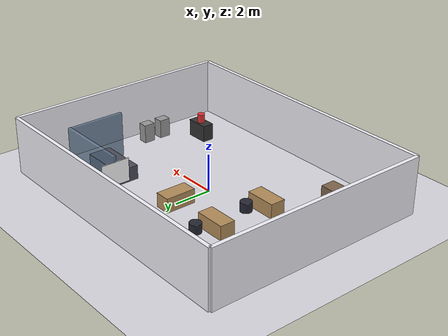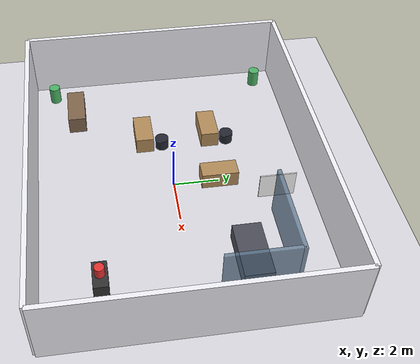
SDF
<?xml version="1.0"?>
<sdf version="1.6">
  <world name="creative_office_world">

    <!-- ==================== PHYSICS & LIGHTING ==================== -->

    <physics type="ode">
      <max_step_size>0.001</max_step_size>
      <real_time_factor>1.0</real_time_factor>
      <real_time_update_rate>1000</real_time_update_rate>
    </physics>

    <!-- Sun (overhead lighting) -->
    <include>
      <uri>model://sun</uri>
    </include>

    <!-- Ambient office lighting -->
    <light type="directional" name="office_light_1">
      <pose>5 5 8 0 0 0</pose>
      <diffuse>0.9 0.9 0.95 1</diffuse>
      <specular>0.2 0.2 0.3 1</specular>
      <direction>-0.3 -0.3 -0.9</direction>
      <cast_shadows>true</cast_shadows>
    </light>

    <light type="point" name="ceiling_light_1">
      <pose>4 4 3.5 0 0 0</pose>
      <diffuse>1.0 1.0 0.95 1</diffuse>
      <specular>0.5 0.5 0.5 1</specular>
      <attenuation>
        <range>10</range>
        <constant>0.5</constant>
        <linear>0.01</linear>
        <quadratic>0.001</quadratic>
      </attenuation>
    </light>

    <!-- ==================== GROUND PLANE ==================== -->

    <model name="office_floor">
      <static>true</static>
      <link name="link">
        <collision name="collision">
          <geometry>
            <plane>
              <normal>0 0 1</normal>
              <size>20 20</size>
            </plane>
          </geometry>
          <surface>
            <friction>
              <ode>
                <mu>100</mu>
                <mu2>50</mu2>
              </ode>
            </friction>
          </surface>
        </collision>
        <visual name="visual">
          <geometry>
            <plane>
              <normal>0 0 1</normal>
              <size>20 20</size>
            </plane>
          </geometry>
          <material>
            <ambient>0.85 0.85 0.88 1</ambient>
            <diffuse>0.85 0.85 0.88 1</diffuse>
            <specular>0.1 0.1 0.1 1</specular>
          </material>
        </visual>
      </link>
    </model>

    <!-- ==================== OFFICE WALLS ==================== -->

    <!-- North Wall -->
    <model name="north_wall">
      <static>true</static>
      <pose>0 6 1.5 0 0 0</pose>
      <link name="link">
        <collision name="collision">
          <geometry>
            <box>
              <size>15 0.2 3</size>
            </box>
          </geometry>
        </collision>
        <visual name="visual">
          <geometry>
            <box>
              <size>15 0.2 3</size>
            </box>
          </geometry>
          <material>
            <ambient>0.95 0.95 0.98 1</ambient>
            <diffuse>0.95 0.95 0.98 1</diffuse>
          </material>
        </visual>
      </link>
    </model>

    <!-- South Wall -->
    <model name="south_wall">
      <static>true</static>
      <pose>0 -6 1.5 0 0 0</pose>
      <link name="link">
        <collision name="collision">
          <geometry>
            <box>
              <size>15 0.2 3</size>
            </box>
          </geometry>
        </collision>
        <visual name="visual">
          <geometry>
            <box>
              <size>15 0.2 3</size>
            </box>
          </geometry>
          <material>
            <ambient>0.95 0.95 0.98 1</ambient>
            <diffuse>0.95 0.95 0.98 1</diffuse>
          </material>
        </visual>
      </link>
    </model>

    <!-- East Wall -->
    <model name="east_wall">
      <static>true</static>
      <pose>7.5 0 1.5 0 0 0</pose>
      <link name="link">
        <collision name="collision">
          <geometry>
            <box>
              <size>0.2 12 3</size>
            </box>
          </geometry>
        </collision>
        <visual name="visual">
          <geometry>
            <box>
              <size>0.2 12 3</size>
            </box>
          </geometry>
          <material>
            <ambient>0.95 0.95 0.98 1</ambient>
            <diffuse>0.95 0.95 0.98 1</diffuse>
          </material>
        </visual>
      </link>
    </model>

    <!-- West Wall -->
    <model name="west_wall">
      <static>true</static>
      <pose>-7.5 0 1.5 0 0 0</pose>
      <link name="link">
        <collision name="collision">
          <geometry>
            <box>
              <size>0.2 12 3</size>
            </box>
          </geometry>
        </collision>
        <visual name="visual">
          <geometry>
            <box>
              <size>0.2 12 3</size>
            </box>
          </geometry>
          <material>
            <ambient>0.95 0.95 0.98 1</ambient>
            <diffuse>0.95 0.95 0.98 1</diffuse>
          </material>
        </visual>
      </link>
    </model>

    <!-- ==================== RECEPTION AREA ==================== -->

    <!-- Reception Desk (Front) -->
    <model name="reception_desk">
      <static>true</static>
      <pose>-5 -4 0.4 0 0 0</pose>
      <link name="link">
        <collision name="collision">
          <geometry>
            <box>
              <size>2.0 0.8 0.8</size>
            </box>
          </geometry>
        </collision>
        <visual name="visual">
          <geometry>
            <box>
              <size>2.0 0.8 0.8</size>
            </box>
          </geometry>
          <material>
            <ambient>0.4 0.3 0.25 1</ambient>
            <diffuse>0.5 0.4 0.3 1</diffuse>
          </material>
        </visual>
      </link>
    </model>

    <!-- ==================== OPEN WORKSPACE DESKS ==================== -->

    <!-- Work Desk 1 -->
    <model name="desk_1">
      <static>true</static>
      <pose>-3 2 0.375 0 0 0</pose>
      <link name="link">
        <collision name="collision">
          <geometry>
            <box>
              <size>1.6 0.8 0.75</size>
            </box>
          </geometry>
        </collision>
        <visual name="visual">
          <geometry>
            <box>
              <size>1.6 0.8 0.75</size>
            </box>
          </geometry>
          <material>
            <ambient>0.6 0.45 0.3 1</ambient>
            <diffuse>0.7 0.55 0.35 1</diffuse>
          </material>
        </visual>
      </link>
    </model>

    <!-- Work Desk 2 -->
    <model name="desk_2">
      <static>true</static>
      <pose>-3 -1 0.375 0 0 0</pose>
      <link name="link">
        <collision name="collision">
          <geometry>
            <box>
              <size>1.6 0.8 0.75</size>
            </box>
          </geometry>
        </collision>
        <visual name="visual">
          <geometry>
            <box>
              <size>1.6 0.8 0.75</size>
            </box>
          </geometry>
          <material>
            <ambient>0.6 0.45 0.3 1</ambient>
            <diffuse>0.7 0.55 0.35 1</diffuse>
          </material>
        </visual>
      </link>
    </model>

    <!-- Work Desk 3 -->
    <model name="desk_3">
      <static>true</static>
      <pose>0 2 0.375 0 0 1.5708</pose>
      <link name="link">
        <collision name="collision">
          <geometry>
            <box>
              <size>1.6 0.8 0.75</size>
            </box>
          </geometry>
        </collision>
        <visual name="visual">
          <geometry>
            <box>
              <size>1.6 0.8 0.75</size>
            </box>
          </geometry>
          <material>
            <ambient>0.6 0.45 0.3 1</ambient>
            <diffuse>0.7 0.55 0.35 1</diffuse>
          </material>
        </visual>
      </link>
    </model>

    <!-- ==================== MEETING ROOM ==================== -->

    <!-- Meeting Room Divider Wall 1 -->
    <model name="meeting_wall_1">
      <static>true</static>
      <pose>4 4 1.2 0 0 0</pose>
      <link name="link">
        <collision name="collision">
          <geometry>
            <box>
              <size>4 0.15 2.4</size>
            </box>
          </geometry>
        </collision>
        <visual name="visual">
          <geometry>
            <box>
              <size>4 0.15 2.4</size>
            </box>
          </geometry>
          <material>
            <ambient>0.3 0.4 0.5 0.8</ambient>
            <diffuse>0.4 0.5 0.6 0.8</diffuse>
          </material>
        </visual>
      </link>
    </model>

    <!-- Meeting Room Divider Wall 2 -->
    <model name="meeting_wall_2">
      <static>true</static>
      <pose>5.9 2.5 1.2 0 0 1.5708</pose>
      <link name="link">
        <collision name="collision">
          <geometry>
            <box>
              <size>3 0.15 2.4</size>
            </box>
          </geometry>
        </collision>
        <visual name="visual">
          <geometry>
            <box>
              <size>3 0.15 2.4</size>
            </box>
          </geometry>
          <material>
            <ambient>0.3 0.4 0.5 0.8</ambient>
            <diffuse>0.4 0.5 0.6 0.8</diffuse>
          </material>
        </visual>
      </link>
    </model>

    <!-- Conference Table -->
    <model name="conference_table">
      <static>true</static>
      <pose>4.5 2.5 0.375 0 0 0</pose>
      <link name="link">
        <collision name="collision">
          <geometry>
            <box>
              <size>2.5 1.2 0.75</size>
            </box>
          </geometry>
        </collision>
        <visual name="visual">
          <geometry>
            <box>
              <size>2.5 1.2 0.75</size>
            </box>
          </geometry>
          <material>
            <ambient>0.2 0.2 0.25 1</ambient>
            <diffuse>0.3 0.3 0.35 1</diffuse>
          </material>
        </visual>
      </link>
    </model>

    <!-- ==================== COFFEE STATION ==================== -->

    <!-- Coffee Counter -->
    <model name="coffee_counter">
      <static>true</static>
      <pose>5 -3.5 0.45 0 0 0</pose>
      <link name="link">
        <collision name="collision">
          <geometry>
            <box>
              <size>1.2 0.6 0.9</size>
            </box>
          </geometry>
        </collision>
        <visual name="visual">
          <geometry>
            <box>
              <size>1.2 0.6 0.9</size>
            </box>
          </geometry>
          <material>
            <ambient>0.15 0.15 0.15 1</ambient>
            <diffuse>0.2 0.2 0.2 1</diffuse>
          </material>
        </visual>
      </link>
    </model>

    <!-- Coffee Machine (cylinder on counter) -->
    <model name="coffee_machine">
      <static>true</static>
      <pose>5 -3.5 1.1 0 0 0</pose>
      <link name="link">
        <collision name="collision">
          <geometry>
            <cylinder>
              <radius>0.2</radius>
              <length>0.5</length>
            </cylinder>
          </geometry>
        </collision>
        <visual name="visual">
          <geometry>
            <cylinder>
              <radius>0.2</radius>
              <length>0.5</length>
            </cylinder>
          </geometry>
          <material>
            <ambient>0.8 0.1 0.1 1</ambient>
            <diffuse>0.9 0.2 0.2 1</diffuse>
          </material>
        </visual>
      </link>
    </model>

    <!-- ==================== OFFICE CHAIRS (Small Cylinders) ==================== -->

    <!-- Chair 1 -->
    <model name="chair_1">
      <static>true</static>
      <pose>-2.5 2.8 0.25 0 0 0</pose>
      <link name="link">
        <collision name="collision">
          <geometry>
            <cylinder>
              <radius>0.3</radius>
              <length>0.5</length>
            </cylinder>
          </geometry>
        </collision>
        <visual name="visual">
          <geometry>
            <cylinder>
              <radius>0.3</radius>
              <length>0.5</length>
            </cylinder>
          </geometry>
          <material>
            <ambient>0.1 0.1 0.15 1</ambient>
            <diffuse>0.15 0.15 0.2 1</diffuse>
          </material>
        </visual>
      </link>
    </model>

    <!-- Chair 2 -->
    <model name="chair_2">
      <static>true</static>
      <pose>-2.5 -0.2 0.25 0 0 0</pose>
      <link name="link">
        <collision name="collision">
          <geometry>
            <cylinder>
              <radius>0.3</radius>
              <length>0.5</length>
            </cylinder>
          </geometry>
        </collision>
        <visual name="visual">
          <geometry>
            <cylinder>
              <radius>0.3</radius>
              <length>0.5</length>
            </cylinder>
          </geometry>
          <material>
            <ambient>0.1 0.1 0.15 1</ambient>
            <diffuse>0.15 0.15 0.2 1</diffuse>
          </material>
        </visual>
      </link>
    </model>

    <!-- ==================== FILING CABINETS ==================== -->

    <!-- Filing Cabinet 1 -->
    <model name="filing_cabinet_1">
      <static>true</static>
      <pose>6.5 -1 0.5 0 0 0</pose>
      <link name="link">
        <collision name="collision">
          <geometry>
            <box>
              <size>0.5 0.6 1.0</size>
            </box>
          </geometry>
        </collision>
        <visual name="visual">
          <geometry>
            <box>
              <size>0.5 0.6 1.0</size>
            </box>
          </geometry>
          <material>
            <ambient>0.5 0.5 0.5 1</ambient>
            <diffuse>0.6 0.6 0.6 1</diffuse>
          </material>
        </visual>
      </link>
    </model>

    <!-- Filing Cabinet 2 -->
    <model name="filing_cabinet_2">
      <static>true</static>
      <pose>6.5 -2 0.5 0 0 0</pose>
      <link name="link">
        <collision name="collision">
          <geometry>
            <box>
              <size>0.5 0.6 1.0</size>
            </box>
          </geometry>
        </collision>
        <visual name="visual">
          <geometry>
            <box>
              <size>0.5 0.6 1.0</size>
            </box>
          </geometry>
          <material>
            <ambient>0.5 0.5 0.5 1</ambient>
            <diffuse>0.6 0.6 0.6 1</diffuse>
          </material>
        </visual>
      </link>
    </model>

    <!-- ==================== PLANTS (Decoration) ==================== -->

    <!-- Plant 1 (Green Cylinder) -->
    <model name="plant_1">
      <static>true</static>
      <pose>-6.5 -5 0.4 0 0 0</pose>
      <link name="link">
        <collision name="collision">
          <geometry>
            <cylinder>
              <radius>0.25</radius>
              <length>0.8</length>
            </cylinder>
          </geometry>
        </collision>
        <visual name="visual">
          <geometry>
            <cylinder>
              <radius>0.25</radius>
              <length>0.8</length>
            </cylinder>
          </geometry>
          <material>
            <ambient>0.2 0.6 0.3 1</ambient>
            <diffuse>0.3 0.7 0.4 1</diffuse>
          </material>
        </visual>
      </link>
    </model>

    <!-- Plant 2 -->
    <model name="plant_2">
      <static>true</static>
      <pose>-6.5 5 0.4 0 0 0</pose>
      <link name="link">
        <collision name="collision">
          <geometry>
            <cylinder>
              <radius>0.25</radius>
              <length>0.8</length>
            </cylinder>
          </geometry>
        </collision>
        <visual name="visual">
          <geometry>
            <cylinder>
              <radius>0.25</radius>
              <length>0.8</length>
            </cylinder>
          </geometry>
          <material>
            <ambient>0.2 0.6 0.3 1</ambient>
            <diffuse>0.3 0.7 0.4 1</diffuse>
          </material>
        </visual>
      </link>
    </model>

    <!-- ==================== WHITEBOARD (Thin Rectangle) ==================== -->

    <model name="whiteboard">
      <static>true</static>
      <pose>2 4 1.5 0 0 1.5708</pose>
      <link name="link">
        <collision name="collision">
          <geometry>
            <box>
              <size>1.5 0.05 1.2</size>
            </box>
          </geometry>
        </collision>
        <visual name="visual">
          <geometry>
            <box>
              <size>1.5 0.05 1.2</size>
            </box>
          </geometry>
          <material>
            <ambient>1 1 1 1</ambient>
            <diffuse>1 1 1 1</diffuse>
          </material>
        </visual>
      </link>
    </model>

  </world>
</sdf>
